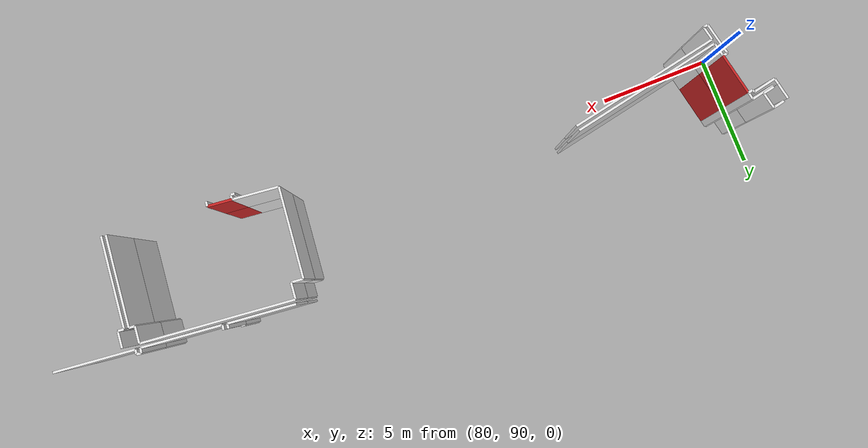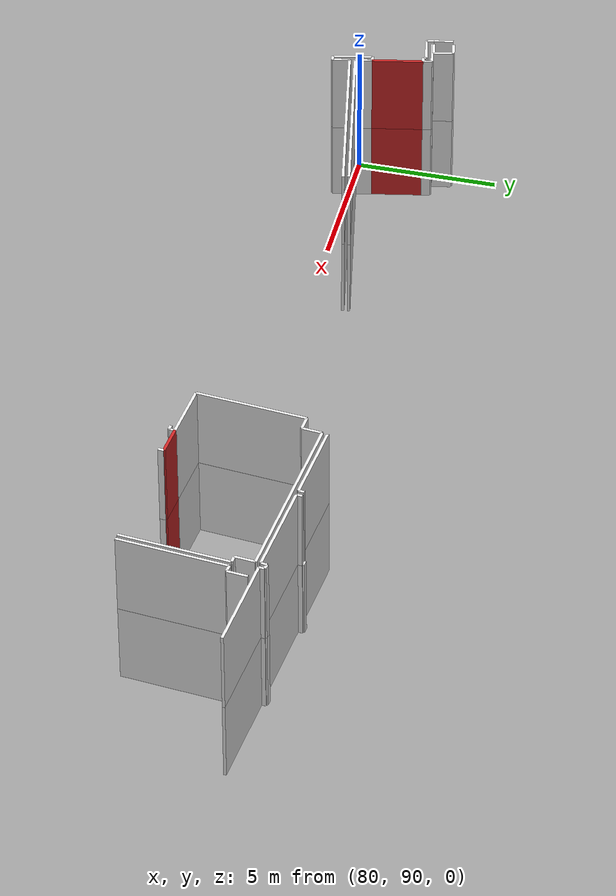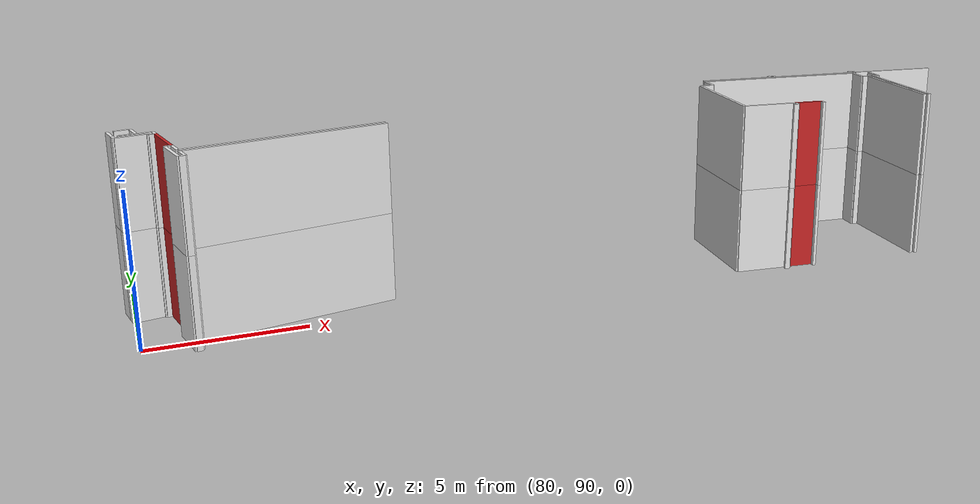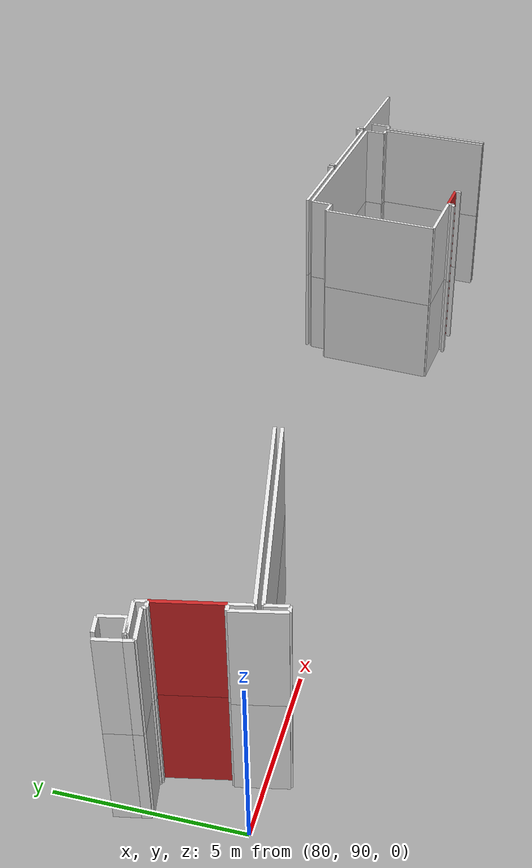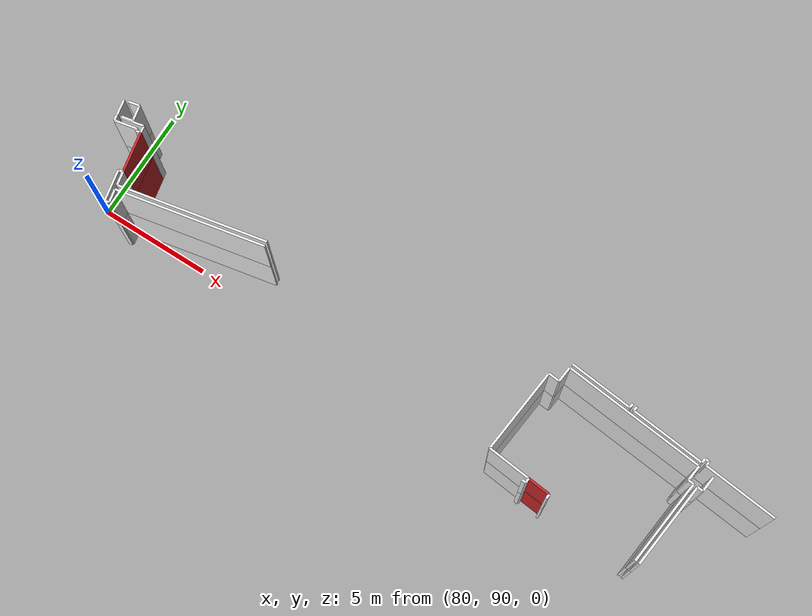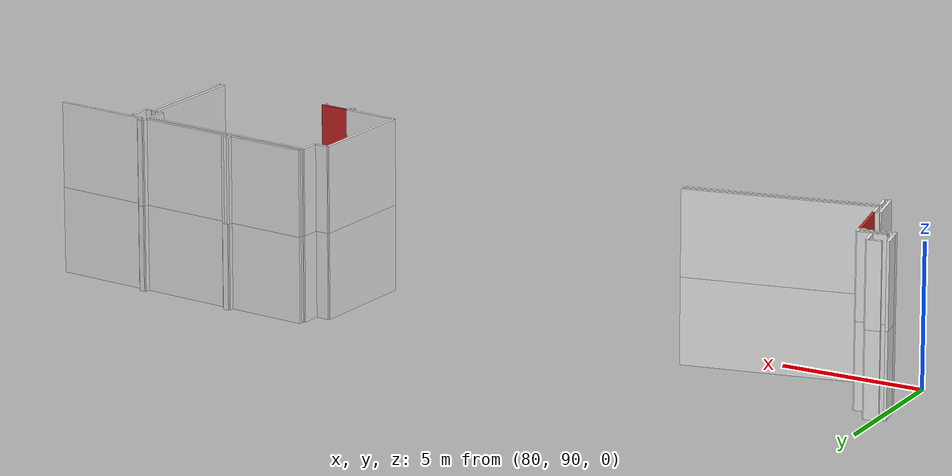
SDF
<sdf version="1.6">
 <world name="default">
  <model name="wall_102.4_88.9_1.5">
   <static>true</static>
   <pose>102.38000000000466 88.94000000017695 1.5 0 0 -0.09966865258337218</pose>
   <link name="link">
    <visual name="visual">
     <geometry><box><size>1.004987562121356 0.1 3</size></box></geometry>
     <material>
      <script><uri>file://media/materials/scripts/gazebo.material</uri><name>Gazebo/Red</name></script>
     </material>
    </visual>
    <collision name="collision"><geometry><box><size>1.004987562121356 0.1 3</size></box></geometry></collision>
   </link>
  </model>
  <model name="wall_81.3_91.7_1.5">
   <static>true</static>
   <pose>81.2949999999837 91.65999999991618 1.5 0 0 -1.374493662723798</pose>
   <link name="link">
    <visual name="visual">
     <geometry><box><size>1.7944637084198858 0.1 3</size></box></geometry>
     <material>
      <script><uri>file://media/materials/scripts/gazebo.material</uri><name>Gazebo/Red</name></script>
     </material>
    </visual>
    <collision name="collision"><geometry><box><size>1.7944637084198858 0.1 3</size></box></geometry></collision>
   </link>
  </model>
  <model name="wall_102.4_88.9_4.5">
   <static>true</static>
   <pose>102.38000000000466 88.94000000017695 4.5 0 0 -0.09966865258337218</pose>
   <link name="link">
    <visual name="visual">
     <geometry><box><size>1.004987562121356 0.1 3</size></box></geometry>
     <material>
      <script><uri>file://media/materials/scripts/gazebo.material</uri><name>Gazebo/Red</name></script>
     </material>
    </visual>
    <collision name="collision"><geometry><box><size>1.004987562121356 0.1 3</size></box></geometry></collision>
   </link>
  </model>
  <model name="wall_81.3_91.7_4.5">
   <static>true</static>
   <pose>81.2949999999837 91.65999999991618 4.5 0 0 -1.374493662723798</pose>
   <link name="link">
    <visual name="visual">
     <geometry><box><size>1.7944637084198858 0.1 3</size></box></geometry>
     <material>
      <script><uri>file://media/materials/scripts/gazebo.material</uri><name>Gazebo/Red</name></script>
     </material>
    </visual>
    <collision name="collision"><geometry><box><size>1.7944637084198858 0.1 3</size></box></geometry></collision>
   </link>
  </model>
  <model name="wall_107.2_90.4_1.5">
   <static>true</static>
   <pose>107.19000000000233 90.36499999999069 1.5 0 0 1.4703398593399408</pose>
   <link name="link">
    <visual name="visual">
     <geometry><box><size>3.78910279619648 0.1 3</size></box></geometry>
     <material>
      <script><uri>file://media/materials/scripts/gazebo.material</uri><name>Gazebo/White</name></script>
     </material>
    </visual>
    <collision name="collision"><geometry><box><size>3.78910279619648 0.1 3</size></box></geometry></collision>
   </link>
  </model>
  <model name="wall_107.3_92.3_1.5">
   <static>true</static>
   <pose>107.25500000000466 92.26000000000931 1.5 0 0 3.061762667803524</pose>
   <link name="link">
    <visual name="visual">
     <geometry><box><size>0.25079872408117443 0.1 3</size></box></geometry>
     <material>
      <script><uri>file://media/materials/scripts/gazebo.material</uri><name>Gazebo/White</name></script>
     </material>
    </visual>
    <collision name="collision"><geometry><box><size>0.25079872408117443 0.1 3</size></box></geometry></collision>
   </link>
  </model>
  <model name="wall_107.2_92.6_1.5">
   <static>true</static>
   <pose>107.16500000000815 92.62000000011176 1.5 0 0 1.4711276743202006</pose>
   <link name="link">
    <visual name="visual">
     <geometry><box><size>0.7034912936644975 0.1 3</size></box></geometry>
     <material>
      <script><uri>file://media/materials/scripts/gazebo.material</uri><name>Gazebo/White</name></script>
     </material>
    </visual>
    <collision name="collision"><geometry><box><size>0.7034912936644975 0.1 3</size></box></geometry></collision>
   </link>
  </model>
  <model name="wall_104.1_93.3_1.5">
   <static>true</static>
   <pose>104.05999999999767 93.28500000014901 1.5 0 0 3.041608692913362</pose>
   <link name="link">
    <visual name="visual">
     <geometry><box><size>6.311521211261997 0.1 3</size></box></geometry>
     <material>
      <script><uri>file://media/materials/scripts/gazebo.material</uri><name>Gazebo/White</name></script>
     </material>
    </visual>
    <collision name="collision"><geometry><box><size>6.311521211261997 0.1 3</size></box></geometry></collision>
   </link>
  </model>
  <model name="wall_100.9_93.3_1.5">
   <static>true</static>
   <pose>100.88499999998021 93.25500000012107 1.5 0 0 -1.6718996985493473</pose>
   <link name="link">
    <visual name="visual">
     <geometry><box><size>0.693541635321099 0.1 3</size></box></geometry>
     <material>
      <script><uri>file://media/materials/scripts/gazebo.material</uri><name>Gazebo/White</name></script>
     </material>
    </visual>
    <collision name="collision"><geometry><box><size>0.693541635321099 0.1 3</size></box></geometry></collision>
   </link>
  </model>
  <model name="wall_100.6_92.9_1.5">
   <static>true</static>
   <pose>100.59999999997672 92.93500000005588 1.5 0 0 3.0419240014674718</pose>
   <link name="link">
    <visual name="visual">
     <geometry><box><size>0.5024937810375105 0.1 3</size></box></geometry>
     <material>
      <script><uri>file://media/materials/scripts/gazebo.material</uri><name>Gazebo/White</name></script>
     </material>
    </visual>
    <collision name="collision"><geometry><box><size>0.5024937810375105 0.1 3</size></box></geometry></collision>
   </link>
  </model>
  <model name="wall_100.2_91.1_1.5">
   <static>true</static>
   <pose>100.15999999997439 91.07499999995343 1.5 0 0 -1.6712527942498523</pose>
   <link name="link">
    <visual name="visual">
     <geometry><box><size>3.78910279619648 0.1 3</size></box></geometry>
     <material>
      <script><uri>file://media/materials/scripts/gazebo.material</uri><name>Gazebo/White</name></script>
     </material>
    </visual>
    <collision name="collision"><geometry><box><size>3.78910279619648 0.1 3</size></box></geometry></collision>
   </link>
  </model>
  <model name="wall_100.9_89.1_1.5">
   <static>true</static>
   <pose>100.92499999998836 89.09000000008382 1.5 0 0 -0.10433183097900064</pose>
   <link name="link">
    <visual name="visual">
     <geometry><box><size>1.9204426573091837 0.1 3</size></box></geometry>
     <material>
      <script><uri>file://media/materials/scripts/gazebo.material</uri><name>Gazebo/White</name></script>
     </material>
    </visual>
    <collision name="collision"><geometry><box><size>1.9204426573091837 0.1 3</size></box></geometry></collision>
   </link>
  </model>
  <model name="wall_107.9_92.6_1.5">
   <static>true</static>
   <pose>107.85500000001048 92.55000000004657 1.5 0 0 -1.670464979335457</pose>
   <link name="link">
    <visual name="visual">
     <geometry><box><size>0.7034912932011471 0.1 3</size></box></geometry>
     <material>
      <script><uri>file://media/materials/scripts/gazebo.material</uri><name>Gazebo/White</name></script>
     </material>
    </visual>
    <collision name="collision"><geometry><box><size>0.7034912932011471 0.1 3</size></box></geometry></collision>
   </link>
  </model>
  <model name="wall_107.7_92.2_1.5">
   <static>true</static>
   <pose>107.69500000000698 92.21500000008382 1.5 0 0 3.0221637283793843</pose>
   <link name="link">
    <visual name="visual">
     <geometry><box><size>0.2517935662158716 0.1 3</size></box></geometry>
     <material>
      <script><uri>file://media/materials/scripts/gazebo.material</uri><name>Gazebo/White</name></script>
     </material>
    </visual>
    <collision name="collision"><geometry><box><size>0.2517935662158716 0.1 3</size></box></geometry></collision>
   </link>
  </model>
  <model name="wall_107.4_90.3_1.5">
   <static>true</static>
   <pose>107.38000000000466 90.34499999997206 1.5 0 0 -1.6712527942498523</pose>
   <link name="link">
    <visual name="visual">
     <geometry><box><size>3.78910279619648 0.1 3</size></box></geometry>
     <material>
      <script><uri>file://media/materials/scripts/gazebo.material</uri><name>Gazebo/White</name></script>
     </material>
    </visual>
    <collision name="collision"><geometry><box><size>3.78910279619648 0.1 3</size></box></geometry></collision>
   </link>
  </model>
  <model name="wall_101.8_88.8_1.5">
   <static>true</static>
   <pose>101.77499999999418 88.80000000004657 1.5 0 0 -0.11710874468606086</pose>
   <link name="link">
    <visual name="visual">
     <geometry><box><size>0.1711724276722267 0.1 3</size></box></geometry>
     <material>
      <script><uri>file://media/materials/scripts/gazebo.material</uri><name>Gazebo/White</name></script>
     </material>
    </visual>
    <collision name="collision"><geometry><box><size>0.1711724276722267 0.1 3</size></box></geometry></collision>
   </link>
  </model>
  <model name="wall_101.9_88.9_1.5">
   <static>true</static>
   <pose>101.86999999999534 88.89000000013039 1.5 0 0 1.4711276743037347</pose>
   <link name="link">
    <visual name="visual">
     <geometry><box><size>0.20099751260961132 0.1 3</size></box></geometry>
     <material>
      <script><uri>file://media/materials/scripts/gazebo.material</uri><name>Gazebo/White</name></script>
     </material>
    </visual>
    <collision name="collision"><geometry><box><size>0.20099751260961132 0.1 3</size></box></geometry></collision>
   </link>
  </model>
  <model name="wall_102.9_88.8_1.5">
   <static>true</static>
   <pose>102.86999999999534 88.79000000003725 1.5 0 0 -1.6704649792860586</pose>
   <link name="link">
    <visual name="visual">
     <geometry><box><size>0.20099751260961132 0.1 3</size></box></geometry>
     <material>
      <script><uri>file://media/materials/scripts/gazebo.material</uri><name>Gazebo/White</name></script>
     </material>
    </visual>
    <collision name="collision"><geometry><box><size>0.20099751260961132 0.1 3</size></box></geometry></collision>
   </link>
  </model>
  <model name="wall_80.2_93.4_1.5">
   <static>true</static>
   <pose>80.17499999998836 93.42000000015832 1.5 0 0 0.2013171085608308</pose>
   <link name="link">
    <visual name="visual">
     <geometry><box><size>0.5000999900114971 0.1 3</size></box></geometry>
     <material>
      <script><uri>file://media/materials/scripts/gazebo.material</uri><name>Gazebo/White</name></script>
     </material>
    </visual>
    <collision name="collision"><geometry><box><size>0.5000999900114971 0.1 3</size></box></geometry></collision>
   </link>
  </model>
  <model name="wall_80.5_93.1_1.5">
   <static>true</static>
   <pose>80.48999999999069 93.13000000012107 1.5 0 0 -1.3677511095704145</pose>
   <link name="link">
    <visual name="visual">
     <geometry><box><size>0.6942621984754026 0.1 3</size></box></geometry>
     <material>
      <script><uri>file://media/materials/scripts/gazebo.material</uri><name>Gazebo/White</name></script>
     </material>
    </visual>
    <collision name="collision"><geometry><box><size>0.6942621984754026 0.1 3</size></box></geometry></collision>
   </link>
  </model>
  <model name="wall_80.3_92.7_1.5">
   <static>true</static>
   <pose>80.31500000000233 92.73999999999069 1.5 0 0 -2.9402755450289626</pose>
   <link name="link">
    <visual name="visual">
     <geometry><box><size>0.5000999900114971 0.1 3</size></box></geometry>
     <material>
      <script><uri>file://media/materials/scripts/gazebo.material</uri><name>Gazebo/White</name></script>
     </material>
    </visual>
    <collision name="collision"><geometry><box><size>0.5000999900114971 0.1 3</size></box></geometry></collision>
   </link>
  </model>
  <model name="wall_80.1_92.7_1.5">
   <static>true</static>
   <pose>80.07500000001164 92.66500000003725 1.5 0 0 -1.3734007660495133</pose>
   <link name="link">
    <visual name="visual">
     <geometry><box><size>0.05099019495510694 0.1 3</size></box></geometry>
     <material>
      <script><uri>file://media/materials/scripts/gazebo.material</uri><name>Gazebo/White</name></script>
     </material>
    </visual>
    <collision name="collision"><geometry><box><size>0.05099019495510694 0.1 3</size></box></geometry></collision>
   </link>
  </model>
  <model name="wall_80.6_92.7_1.5">
   <static>true</static>
   <pose>80.57000000000698 92.73999999999069 1.5 0 0 0.20131710810466522</pose>
   <link name="link">
    <visual name="visual">
     <geometry><box><size>1.0001999799298806 0.1 3</size></box></geometry>
     <material>
      <script><uri>file://media/materials/scripts/gazebo.material</uri><name>Gazebo/White</name></script>
     </material>
    </visual>
    <collision name="collision"><geometry><box><size>1.0001999799298806 0.1 3</size></box></geometry></collision>
   </link>
  </model>
  <model name="wall_81.1_92.7_1.5">
   <static>true</static>
   <pose>81.08999999999651 92.68999999994412 1.5 0 0 -1.373400766833078</pose>
   <link name="link">
    <visual name="visual">
     <geometry><box><size>0.3059411706324631 0.1 3</size></box></geometry>
     <material>
      <script><uri>file://media/materials/scripts/gazebo.material</uri><name>Gazebo/White</name></script>
     </material>
    </visual>
    <collision name="collision"><geometry><box><size>0.3059411706324631 0.1 3</size></box></geometry></collision>
   </link>
  </model>
  <model name="wall_81.5_90.5_1.5">
   <static>true</static>
   <pose>81.52999999999884 90.48499999986961 1.5 0 0 -1.3701434493385232</pose>
   <link name="link">
    <visual name="visual">
     <geometry><box><size>0.6020797288042661 0.1 3</size></box></geometry>
     <material>
      <script><uri>file://media/materials/scripts/gazebo.material</uri><name>Gazebo/White</name></script>
     </material>
    </visual>
    <collision name="collision"><geometry><box><size>0.6020797288042661 0.1 3</size></box></geometry></collision>
   </link>
  </model>
  <model name="wall_84.8_90.8_1.5">
   <static>true</static>
   <pose>84.80500000002212 90.8300000000745 1.5 0 0 0.19649816258288277</pose>
   <link name="link">
    <visual name="visual">
     <geometry><box><size>6.556165037625101 0.1 3</size></box></geometry>
     <material>
      <script><uri>file://media/materials/scripts/gazebo.material</uri><name>Gazebo/White</name></script>
     </material>
    </visual>
    <collision name="collision"><geometry><box><size>6.556165037625101 0.1 3</size></box></geometry></collision>
   </link>
  </model>
  <model name="wall_79.8_93.0_1.5">
   <static>true</static>
   <pose>79.80499999999302 92.98999999999069 1.5 0 0 -1.3818991459561358</pose>
   <link name="link">
    <visual name="visual">
     <geometry><box><size>0.6923149573923696 0.1 3</size></box></geometry>
     <material>
      <script><uri>file://media/materials/scripts/gazebo.material</uri><name>Gazebo/White</name></script>
     </material>
    </visual>
    <collision name="collision"><geometry><box><size>0.6923149573923696 0.1 3</size></box></geometry></collision>
   </link>
  </model>
  <model name="wall_79.9_92.5_1.5">
   <static>true</static>
   <pose>79.89499999998952 92.52499999990687 1.5 0 0 -1.373400766989791</pose>
   <link name="link">
    <visual name="visual">
     <geometry><box><size>0.25495097567735614 0.1 3</size></box></geometry>
     <material>
      <script><uri>file://media/materials/scripts/gazebo.material</uri><name>Gazebo/White</name></script>
     </material>
    </visual>
    <collision name="collision"><geometry><box><size>0.25495097567735614 0.1 3</size></box></geometry></collision>
   </link>
  </model>
  <model name="wall_80.4_92.5_1.5">
   <static>true</static>
   <pose>80.41000000000349 92.5 1.5 0 0 0.20131710854919393</pose>
   <link name="link">
    <visual name="visual">
     <geometry><box><size>1.0001999800800263 0.1 3</size></box></geometry>
     <material>
      <script><uri>file://media/materials/scripts/gazebo.material</uri><name>Gazebo/White</name></script>
     </material>
    </visual>
    <collision name="collision"><geometry><box><size>1.0001999800800263 0.1 3</size></box></geometry></collision>
   </link>
  </model>
  <model name="wall_80.9_92.6_1.5">
   <static>true</static>
   <pose>80.91000000000349 92.55000000004657 1.5 0 0 -1.3734007675047049</pose>
   <link name="link">
    <visual name="visual">
     <geometry><box><size>0.10198039035541688 0.1 3</size></box></geometry>
     <material>
      <script><uri>file://media/materials/scripts/gazebo.material</uri><name>Gazebo/White</name></script>
     </material>
    </visual>
    <collision name="collision"><geometry><box><size>0.10198039035541688 0.1 3</size></box></geometry></collision>
   </link>
  </model>
  <model name="wall_81.0_92.5_1.5">
   <static>true</static>
   <pose>81.01999999998952 92.52000000001863 1.5 0 0 0.19739556001778746</pose>
   <link name="link">
    <visual name="visual">
     <geometry><box><size>0.20396078056243275 0.1 3</size></box></geometry>
     <material>
      <script><uri>file://media/materials/scripts/gazebo.material</uri><name>Gazebo/White</name></script>
     </material>
    </visual>
    <collision name="collision"><geometry><box><size>0.20396078056243275 0.1 3</size></box></geometry></collision>
   </link>
  </model>
  <model name="wall_81.4_90.8_1.5">
   <static>true</static>
   <pose>81.36999999999534 90.76000000000931 1.5 0 0 -2.944197095754793</pose>
   <link name="link">
    <visual name="visual">
     <geometry><box><size>0.20396078041403173 0.1 3</size></box></geometry>
     <material>
      <script><uri>file://media/materials/scripts/gazebo.material</uri><name>Gazebo/White</name></script>
     </material>
    </visual>
    <collision name="collision"><geometry><box><size>0.20396078041403173 0.1 3</size></box></geometry></collision>
   </link>
  </model>
  <model name="wall_81.4_90.1_1.5">
   <static>true</static>
   <pose>81.41000000000349 90.06000000005588 1.5 0 0 -1.3677511096114738</pose>
   <link name="link">
    <visual name="visual">
     <geometry><box><size>1.3885243969390675 0.1 3</size></box></geometry>
     <material>
      <script><uri>file://media/materials/scripts/gazebo.material</uri><name>Gazebo/White</name></script>
     </material>
    </visual>
    <collision name="collision"><geometry><box><size>1.3885243969390675 0.1 3</size></box></geometry></collision>
   </link>
  </model>
  <model name="wall_81.6_89.4_1.5">
   <static>true</static>
   <pose>81.64499999998952 89.39999999990687 1.5 0 0 0.20749622662047904</pose>
   <link name="link">
    <visual name="visual">
     <geometry><box><size>0.19416487839942884 0.1 3</size></box></geometry>
     <material>
      <script><uri>file://media/materials/scripts/gazebo.material</uri><name>Gazebo/White</name></script>
     </material>
    </visual>
    <collision name="collision"><geometry><box><size>0.19416487839942884 0.1 3</size></box></geometry></collision>
   </link>
  </model>
  <model name="wall_109.1_93.0_1.5">
   <static>true</static>
   <pose>109.06500000000233 92.95999999996275 1.5 0 0 3.038614747280068</pose>
   <link name="link">
    <visual name="visual">
     <geometry><box><size>3.3075217308649383 0.1 3</size></box></geometry>
     <material>
      <script><uri>file://media/materials/scripts/gazebo.material</uri><name>Gazebo/White</name></script>
     </material>
    </visual>
    <collision name="collision"><geometry><box><size>3.3075217308649383 0.1 3</size></box></geometry></collision>
   </link>
  </model>
  <model name="wall_107.4_93.2_1.5">
   <static>true</static>
   <pose>107.42999999999302 93.2249999998603 1.5 0 0 1.4659193879370842</pose>
   <link name="link">
    <visual name="visual">
     <geometry><box><size>0.19104973169180559 0.1 3</size></box></geometry>
     <material>
      <script><uri>file://media/materials/scripts/gazebo.material</uri><name>Gazebo/White</name></script>
     </material>
    </visual>
    <collision name="collision"><geometry><box><size>0.19104973169180559 0.1 3</size></box></geometry></collision>
   </link>
  </model>
  <model name="wall_107.3_93.3_1.5">
   <static>true</static>
   <pose>107.34500000000116 93.33499999996275 1.5 0 0 2.9849907752705747</pose>
   <link name="link">
    <visual name="visual">
     <geometry><box><size>0.19235384065968367 0.1 3</size></box></geometry>
     <material>
      <script><uri>file://media/materials/scripts/gazebo.material</uri><name>Gazebo/White</name></script>
     </material>
    </visual>
    <collision name="collision"><geometry><box><size>0.19235384065968367 0.1 3</size></box></geometry></collision>
   </link>
  </model>
  <model name="wall_107.2_93.2_1.5">
   <static>true</static>
   <pose>107.23499999998603 93.24500000011176 1.5 0 0 -1.712693381554281</pose>
   <link name="link">
    <visual name="visual">
     <geometry><box><size>0.21213203432303704 0.1 3</size></box></geometry>
     <material>
      <script><uri>file://media/materials/scripts/gazebo.material</uri><name>Gazebo/White</name></script>
     </material>
    </visual>
    <collision name="collision"><geometry><box><size>0.21213203432303704 0.1 3</size></box></geometry></collision>
   </link>
  </model>
  <model name="wall_105.6_93.3_1.5">
   <static>true</static>
   <pose>105.57499999998254 93.31000000005588 1.5 0 0 3.038614747278259</pose>
   <link name="link">
    <visual name="visual">
     <geometry><box><size>3.307521730807039 0.1 3</size></box></geometry>
     <material>
      <script><uri>file://media/materials/scripts/gazebo.material</uri><name>Gazebo/White</name></script>
     </material>
    </visual>
    <collision name="collision"><geometry><box><size>3.307521730807039 0.1 3</size></box></geometry></collision>
   </link>
  </model>
  <model name="wall_103.9_93.6_1.5">
   <static>true</static>
   <pose>103.94500000000698 93.5800000000745 1.5 0 0 1.4219063791853994</pose>
   <link name="link">
    <visual name="visual">
     <geometry><box><size>0.20223748434991518 0.1 3</size></box></geometry>
     <material>
      <script><uri>file://media/materials/scripts/gazebo.material</uri><name>Gazebo/White</name></script>
     </material>
    </visual>
    <collision name="collision"><geometry><box><size>0.20223748434991518 0.1 3</size></box></geometry></collision>
   </link>
  </model>
  <model name="wall_103.9_93.7_1.5">
   <static>true</static>
   <pose>103.86000000001513 93.69000000017695 1.5 0 0 3.0419240010121844</pose>
   <link name="link">
    <visual name="visual">
     <geometry><box><size>0.20099751243585498 0.1 3</size></box></geometry>
     <material>
      <script><uri>file://media/materials/scripts/gazebo.material</uri><name>Gazebo/White</name></script>
     </material>
    </visual>
    <collision name="collision"><geometry><box><size>0.20099751243585498 0.1 3</size></box></geometry></collision>
   </link>
  </model>
  <model name="wall_103.8_93.6_1.5">
   <static>true</static>
   <pose>103.75 93.60000000009313 1.5 0 0 -1.6704649792860586</pose>
   <link name="link">
    <visual name="visual">
     <geometry><box><size>0.20099751260961132 0.1 3</size></box></geometry>
     <material>
      <script><uri>file://media/materials/scripts/gazebo.material</uri><name>Gazebo/White</name></script>
     </material>
    </visual>
    <collision name="collision"><geometry><box><size>0.20099751260961132 0.1 3</size></box></geometry></collision>
   </link>
  </model>
  <model name="wall_102.3_93.6_1.5">
   <static>true</static>
   <pose>102.34500000000116 93.63999999989755 1.5 0 0 3.041569139581511</pose>
   <link name="link">
    <visual name="visual">
     <geometry><box><size>2.804014978520681 0.1 3</size></box></geometry>
     <material>
      <script><uri>file://media/materials/scripts/gazebo.material</uri><name>Gazebo/White</name></script>
     </material>
    </visual>
    <collision name="collision"><geometry><box><size>2.804014978520681 0.1 3</size></box></geometry></collision>
   </link>
  </model>
  <model name="wall_84.8_90.6_1.5">
   <static>true</static>
   <pose>84.83499999999185 90.63500000000931 1.5 0 0 -2.946590865346617</pose>
   <link name="link">
    <visual name="visual">
     <geometry><box><size>6.554220014613294 0.1 3</size></box></geometry>
     <material>
      <script><uri>file://media/materials/scripts/gazebo.material</uri><name>Gazebo/White</name></script>
     </material>
    </visual>
    <collision name="collision"><geometry><box><size>6.554220014613294 0.1 3</size></box></geometry></collision>
   </link>
  </model>
  <model name="wall_81.7_89.7_1.5">
   <static>true</static>
   <pose>81.67999999999302 89.70999999996275 1.5 0 0 -1.3667783472355337</pose>
   <link name="link">
    <visual name="visual">
     <geometry><box><size>0.592283715870451 0.1 3</size></box></geometry>
     <material>
      <script><uri>file://media/materials/scripts/gazebo.material</uri><name>Gazebo/White</name></script>
     </material>
    </visual>
    <collision name="collision"><geometry><box><size>0.592283715870451 0.1 3</size></box></geometry></collision>
   </link>
  </model>
  <model name="wall_107.2_90.4_4.5">
   <static>true</static>
   <pose>107.19000000000233 90.36499999999069 4.5 0 0 1.4703398593399408</pose>
   <link name="link">
    <visual name="visual">
     <geometry><box><size>3.78910279619648 0.1 3</size></box></geometry>
     <material>
      <script><uri>file://media/materials/scripts/gazebo.material</uri><name>Gazebo/White</name></script>
     </material>
    </visual>
    <collision name="collision"><geometry><box><size>3.78910279619648 0.1 3</size></box></geometry></collision>
   </link>
  </model>
  <model name="wall_107.3_92.3_4.5">
   <static>true</static>
   <pose>107.25500000000466 92.26000000000931 4.5 0 0 3.061762667803524</pose>
   <link name="link">
    <visual name="visual">
     <geometry><box><size>0.25079872408117443 0.1 3</size></box></geometry>
     <material>
      <script><uri>file://media/materials/scripts/gazebo.material</uri><name>Gazebo/White</name></script>
     </material>
    </visual>
    <collision name="collision"><geometry><box><size>0.25079872408117443 0.1 3</size></box></geometry></collision>
   </link>
  </model>
  <model name="wall_107.2_92.6_4.5">
   <static>true</static>
   <pose>107.16500000000815 92.62000000011176 4.5 0 0 1.4711276743202006</pose>
   <link name="link">
    <visual name="visual">
     <geometry><box><size>0.7034912936644975 0.1 3</size></box></geometry>
     <material>
      <script><uri>file://media/materials/scripts/gazebo.material</uri><name>Gazebo/White</name></script>
     </material>
    </visual>
    <collision name="collision"><geometry><box><size>0.7034912936644975 0.1 3</size></box></geometry></collision>
   </link>
  </model>
  <model name="wall_104.1_93.3_4.5">
   <static>true</static>
   <pose>104.05999999999767 93.28500000014901 4.5 0 0 3.041608692913362</pose>
   <link name="link">
    <visual name="visual">
     <geometry><box><size>6.311521211261997 0.1 3</size></box></geometry>
     <material>
      <script><uri>file://media/materials/scripts/gazebo.material</uri><name>Gazebo/White</name></script>
     </material>
    </visual>
    <collision name="collision"><geometry><box><size>6.311521211261997 0.1 3</size></box></geometry></collision>
   </link>
  </model>
  <model name="wall_100.9_93.3_4.5">
   <static>true</static>
   <pose>100.88499999998021 93.25500000012107 4.5 0 0 -1.6718996985493473</pose>
   <link name="link">
    <visual name="visual">
     <geometry><box><size>0.693541635321099 0.1 3</size></box></geometry>
     <material>
      <script><uri>file://media/materials/scripts/gazebo.material</uri><name>Gazebo/White</name></script>
     </material>
    </visual>
    <collision name="collision"><geometry><box><size>0.693541635321099 0.1 3</size></box></geometry></collision>
   </link>
  </model>
  <model name="wall_100.6_92.9_4.5">
   <static>true</static>
   <pose>100.59999999997672 92.93500000005588 4.5 0 0 3.0419240014674718</pose>
   <link name="link">
    <visual name="visual">
     <geometry><box><size>0.5024937810375105 0.1 3</size></box></geometry>
     <material>
      <script><uri>file://media/materials/scripts/gazebo.material</uri><name>Gazebo/White</name></script>
     </material>
    </visual>
    <collision name="collision"><geometry><box><size>0.5024937810375105 0.1 3</size></box></geometry></collision>
   </link>
  </model>
  <model name="wall_100.2_91.1_4.5">
   <static>true</static>
   <pose>100.15999999997439 91.07499999995343 4.5 0 0 -1.6712527942498523</pose>
   <link name="link">
    <visual name="visual">
     <geometry><box><size>3.78910279619648 0.1 3</size></box></geometry>
     <material>
      <script><uri>file://media/materials/scripts/gazebo.material</uri><name>Gazebo/White</name></script>
     </material>
    </visual>
    <collision name="collision"><geometry><box><size>3.78910279619648 0.1 3</size></box></geometry></collision>
   </link>
  </model>
  <model name="wall_100.9_89.1_4.5">
   <static>true</static>
   <pose>100.92499999998836 89.09000000008382 4.5 0 0 -0.10433183097900064</pose>
   <link name="link">
    <visual name="visual">
     <geometry><box><size>1.9204426573091837 0.1 3</size></box></geometry>
     <material>
      <script><uri>file://media/materials/scripts/gazebo.material</uri><name>Gazebo/White</name></script>
     </material>
    </visual>
    <collision name="collision"><geometry><box><size>1.9204426573091837 0.1 3</size></box></geometry></collision>
   </link>
  </model>
  <model name="wall_107.9_92.6_4.5">
   <static>true</static>
   <pose>107.85500000001048 92.55000000004657 4.5 0 0 -1.670464979335457</pose>
   <link name="link">
    <visual name="visual">
     <geometry><box><size>0.7034912932011471 0.1 3</size></box></geometry>
     <material>
      <script><uri>file://media/materials/scripts/gazebo.material</uri><name>Gazebo/White</name></script>
     </material>
    </visual>
    <collision name="collision"><geometry><box><size>0.7034912932011471 0.1 3</size></box></geometry></collision>
   </link>
  </model>
  <model name="wall_107.7_92.2_4.5">
   <static>true</static>
   <pose>107.69500000000698 92.21500000008382 4.5 0 0 3.0221637283793843</pose>
   <link name="link">
    <visual name="visual">
     <geometry><box><size>0.2517935662158716 0.1 3</size></box></geometry>
     <material>
      <script><uri>file://media/materials/scripts/gazebo.material</uri><name>Gazebo/White</name></script>
     </material>
    </visual>
    <collision name="collision"><geometry><box><size>0.2517935662158716 0.1 3</size></box></geometry></collision>
   </link>
  </model>
  <model name="wall_107.4_90.3_4.5">
   <static>true</static>
   <pose>107.38000000000466 90.34499999997206 4.5 0 0 -1.6712527942498523</pose>
   <link name="link">
    <visual name="visual">
     <geometry><box><size>3.78910279619648 0.1 3</size></box></geometry>
     <material>
      <script><uri>file://media/materials/scripts/gazebo.material</uri><name>Gazebo/White</name></script>
     </material>
    </visual>
    <collision name="collision"><geometry><box><size>3.78910279619648 0.1 3</size></box></geometry></collision>
   </link>
  </model>
  <model name="wall_101.8_88.8_4.5">
   <static>true</static>
   <pose>101.77499999999418 88.80000000004657 4.5 0 0 -0.11710874468606086</pose>
   <link name="link">
    <visual name="visual">
     <geometry><box><size>0.1711724276722267 0.1 3</size></box></geometry>
     <material>
      <script><uri>file://media/materials/scripts/gazebo.material</uri><name>Gazebo/White</name></script>
     </material>
    </visual>
    <collision name="collision"><geometry><box><size>0.1711724276722267 0.1 3</size></box></geometry></collision>
   </link>
  </model>
  <model name="wall_101.9_88.9_4.5">
   <static>true</static>
   <pose>101.86999999999534 88.89000000013039 4.5 0 0 1.4711276743037347</pose>
   <link name="link">
    <visual name="visual">
     <geometry><box><size>0.20099751260961132 0.1 3</size></box></geometry>
     <material>
      <script><uri>file://media/materials/scripts/gazebo.material</uri><name>Gazebo/White</name></script>
     </material>
    </visual>
    <collision name="collision"><geometry><box><size>0.20099751260961132 0.1 3</size></box></geometry></collision>
   </link>
  </model>
  <model name="wall_102.9_88.8_4.5">
   <static>true</static>
   <pose>102.86999999999534 88.79000000003725 4.5 0 0 -1.6704649792860586</pose>
   <link name="link">
    <visual name="visual">
     <geometry><box><size>0.20099751260961132 0.1 3</size></box></geometry>
     <material>
      <script><uri>file://media/materials/scripts/gazebo.material</uri><name>Gazebo/White</name></script>
     </material>
    </visual>
    <collision name="collision"><geometry><box><size>0.20099751260961132 0.1 3</size></box></geometry></collision>
   </link>
  </model>
  <model name="wall_80.2_93.4_4.5">
   <static>true</static>
   <pose>80.17499999998836 93.42000000015832 4.5 0 0 0.2013171085608308</pose>
   <link name="link">
    <visual name="visual">
     <geometry><box><size>0.5000999900114971 0.1 3</size></box></geometry>
     <material>
      <script><uri>file://media/materials/scripts/gazebo.material</uri><name>Gazebo/White</name></script>
     </material>
    </visual>
    <collision name="collision"><geometry><box><size>0.5000999900114971 0.1 3</size></box></geometry></collision>
   </link>
  </model>
  <model name="wall_80.5_93.1_4.5">
   <static>true</static>
   <pose>80.48999999999069 93.13000000012107 4.5 0 0 -1.3677511095704145</pose>
   <link name="link">
    <visual name="visual">
     <geometry><box><size>0.6942621984754026 0.1 3</size></box></geometry>
     <material>
      <script><uri>file://media/materials/scripts/gazebo.material</uri><name>Gazebo/White</name></script>
     </material>
    </visual>
    <collision name="collision"><geometry><box><size>0.6942621984754026 0.1 3</size></box></geometry></collision>
   </link>
  </model>
  <model name="wall_80.3_92.7_4.5">
   <static>true</static>
   <pose>80.31500000000233 92.73999999999069 4.5 0 0 -2.9402755450289626</pose>
   <link name="link">
    <visual name="visual">
     <geometry><box><size>0.5000999900114971 0.1 3</size></box></geometry>
     <material>
      <script><uri>file://media/materials/scripts/gazebo.material</uri><name>Gazebo/White</name></script>
     </material>
    </visual>
    <collision name="collision"><geometry><box><size>0.5000999900114971 0.1 3</size></box></geometry></collision>
   </link>
  </model>
  <model name="wall_80.1_92.7_4.5">
   <static>true</static>
   <pose>80.07500000001164 92.66500000003725 4.5 0 0 -1.3734007660495133</pose>
   <link name="link">
    <visual name="visual">
     <geometry><box><size>0.05099019495510694 0.1 3</size></box></geometry>
     <material>
      <script><uri>file://media/materials/scripts/gazebo.material</uri><name>Gazebo/White</name></script>
     </material>
    </visual>
    <collision name="collision"><geometry><box><size>0.05099019495510694 0.1 3</size></box></geometry></collision>
   </link>
  </model>
  <model name="wall_80.6_92.7_4.5">
   <static>true</static>
   <pose>80.57000000000698 92.73999999999069 4.5 0 0 0.20131710810466522</pose>
   <link name="link">
    <visual name="visual">
     <geometry><box><size>1.0001999799298806 0.1 3</size></box></geometry>
     <material>
      <script><uri>file://media/materials/scripts/gazebo.material</uri><name>Gazebo/White</name></script>
     </material>
    </visual>
    <collision name="collision"><geometry><box><size>1.0001999799298806 0.1 3</size></box></geometry></collision>
   </link>
  </model>
  <model name="wall_81.1_92.7_4.5">
   <static>true</static>
   <pose>81.08999999999651 92.68999999994412 4.5 0 0 -1.373400766833078</pose>
   <link name="link">
    <visual name="visual">
     <geometry><box><size>0.3059411706324631 0.1 3</size></box></geometry>
     <material>
      <script><uri>file://media/materials/scripts/gazebo.material</uri><name>Gazebo/White</name></script>
     </material>
    </visual>
    <collision name="collision"><geometry><box><size>0.3059411706324631 0.1 3</size></box></geometry></collision>
   </link>
  </model>
  <model name="wall_81.5_90.5_4.5">
   <static>true</static>
   <pose>81.52999999999884 90.48499999986961 4.5 0 0 -1.3701434493385232</pose>
   <link name="link">
    <visual name="visual">
     <geometry><box><size>0.6020797288042661 0.1 3</size></box></geometry>
     <material>
      <script><uri>file://media/materials/scripts/gazebo.material</uri><name>Gazebo/White</name></script>
     </material>
    </visual>
    <collision name="collision"><geometry><box><size>0.6020797288042661 0.1 3</size></box></geometry></collision>
   </link>
  </model>
  <model name="wall_84.8_90.8_4.5">
   <static>true</static>
   <pose>84.80500000002212 90.8300000000745 4.5 0 0 0.19649816258288277</pose>
   <link name="link">
    <visual name="visual">
     <geometry><box><size>6.556165037625101 0.1 3</size></box></geometry>
     <material>
      <script><uri>file://media/materials/scripts/gazebo.material</uri><name>Gazebo/White</name></script>
     </material>
    </visual>
    <collision name="collision"><geometry><box><size>6.556165037625101 0.1 3</size></box></geometry></collision>
   </link>
  </model>
  <model name="wall_79.8_93.0_4.5">
   <static>true</static>
   <pose>79.80499999999302 92.98999999999069 4.5 0 0 -1.3818991459561358</pose>
   <link name="link">
    <visual name="visual">
     <geometry><box><size>0.6923149573923696 0.1 3</size></box></geometry>
     <material>
      <script><uri>file://media/materials/scripts/gazebo.material</uri><name>Gazebo/White</name></script>
     </material>
    </visual>
    <collision name="collision"><geometry><box><size>0.6923149573923696 0.1 3</size></box></geometry></collision>
   </link>
  </model>
  <model name="wall_79.9_92.5_4.5">
   <static>true</static>
   <pose>79.89499999998952 92.52499999990687 4.5 0 0 -1.373400766989791</pose>
   <link name="link">
    <visual name="visual">
     <geometry><box><size>0.25495097567735614 0.1 3</size></box></geometry>
     <material>
      <script><uri>file://media/materials/scripts/gazebo.material</uri><name>Gazebo/White</name></script>
     </material>
    </visual>
    <collision name="collision"><geometry><box><size>0.25495097567735614 0.1 3</size></box></geometry></collision>
   </link>
  </model>
  <model name="wall_80.4_92.5_4.5">
   <static>true</static>
   <pose>80.41000000000349 92.5 4.5 0 0 0.20131710854919393</pose>
   <link name="link">
    <visual name="visual">
     <geometry><box><size>1.0001999800800263 0.1 3</size></box></geometry>
     <material>
      <script><uri>file://media/materials/scripts/gazebo.material</uri><name>Gazebo/White</name></script>
     </material>
    </visual>
    <collision name="collision"><geometry><box><size>1.0001999800800263 0.1 3</size></box></geometry></collision>
   </link>
  </model>
  <model name="wall_80.9_92.6_4.5">
   <static>true</static>
   <pose>80.91000000000349 92.55000000004657 4.5 0 0 -1.3734007675047049</pose>
   <link name="link">
    <visual name="visual">
     <geometry><box><size>0.10198039035541688 0.1 3</size></box></geometry>
     <material>
      <script><uri>file://media/materials/scripts/gazebo.material</uri><name>Gazebo/White</name></script>
     </material>
    </visual>
    <collision name="collision"><geometry><box><size>0.10198039035541688 0.1 3</size></box></geometry></collision>
   </link>
  </model>
  <model name="wall_81.0_92.5_4.5">
   <static>true</static>
   <pose>81.01999999998952 92.52000000001863 4.5 0 0 0.19739556001778746</pose>
   <link name="link">
    <visual name="visual">
     <geometry><box><size>0.20396078056243275 0.1 3</size></box></geometry>
     <material>
      <script><uri>file://media/materials/scripts/gazebo.material</uri><name>Gazebo/White</name></script>
     </material>
    </visual>
    <collision name="collision"><geometry><box><size>0.20396078056243275 0.1 3</size></box></geometry></collision>
   </link>
  </model>
  <model name="wall_81.4_90.8_4.5">
   <static>true</static>
   <pose>81.36999999999534 90.76000000000931 4.5 0 0 -2.944197095754793</pose>
   <link name="link">
    <visual name="visual">
     <geometry><box><size>0.20396078041403173 0.1 3</size></box></geometry>
     <material>
      <script><uri>file://media/materials/scripts/gazebo.material</uri><name>Gazebo/White</name></script>
     </material>
    </visual>
    <collision name="collision"><geometry><box><size>0.20396078041403173 0.1 3</size></box></geometry></collision>
   </link>
  </model>
  <model name="wall_81.4_90.1_4.5">
   <static>true</static>
   <pose>81.41000000000349 90.06000000005588 4.5 0 0 -1.3677511096114738</pose>
   <link name="link">
    <visual name="visual">
     <geometry><box><size>1.3885243969390675 0.1 3</size></box></geometry>
     <material>
      <script><uri>file://media/materials/scripts/gazebo.material</uri><name>Gazebo/White</name></script>
     </material>
    </visual>
    <collision name="collision"><geometry><box><size>1.3885243969390675 0.1 3</size></box></geometry></collision>
   </link>
  </model>
  <model name="wall_81.6_89.4_4.5">
   <static>true</static>
   <pose>81.64499999998952 89.39999999990687 4.5 0 0 0.20749622662047904</pose>
   <link name="link">
    <visual name="visual">
     <geometry><box><size>0.19416487839942884 0.1 3</size></box></geometry>
     <material>
      <script><uri>file://media/materials/scripts/gazebo.material</uri><name>Gazebo/White</name></script>
     </material>
    </visual>
    <collision name="collision"><geometry><box><size>0.19416487839942884 0.1 3</size></box></geometry></collision>
   </link>
  </model>
  <model name="wall_109.1_93.0_4.5">
   <static>true</static>
   <pose>109.06500000000233 92.95999999996275 4.5 0 0 3.038614747280068</pose>
   <link name="link">
    <visual name="visual">
     <geometry><box><size>3.3075217308649383 0.1 3</size></box></geometry>
     <material>
      <script><uri>file://media/materials/scripts/gazebo.material</uri><name>Gazebo/White</name></script>
     </material>
    </visual>
    <collision name="collision"><geometry><box><size>3.3075217308649383 0.1 3</size></box></geometry></collision>
   </link>
  </model>
  <model name="wall_107.4_93.2_4.5">
   <static>true</static>
   <pose>107.42999999999302 93.2249999998603 4.5 0 0 1.4659193879370842</pose>
   <link name="link">
    <visual name="visual">
     <geometry><box><size>0.19104973169180559 0.1 3</size></box></geometry>
     <material>
      <script><uri>file://media/materials/scripts/gazebo.material</uri><name>Gazebo/White</name></script>
     </material>
    </visual>
    <collision name="collision"><geometry><box><size>0.19104973169180559 0.1 3</size></box></geometry></collision>
   </link>
  </model>
  <model name="wall_107.3_93.3_4.5">
   <static>true</static>
   <pose>107.34500000000116 93.33499999996275 4.5 0 0 2.9849907752705747</pose>
   <link name="link">
    <visual name="visual">
     <geometry><box><size>0.19235384065968367 0.1 3</size></box></geometry>
     <material>
      <script><uri>file://media/materials/scripts/gazebo.material</uri><name>Gazebo/White</name></script>
     </material>
    </visual>
    <collision name="collision"><geometry><box><size>0.19235384065968367 0.1 3</size></box></geometry></collision>
   </link>
  </model>
  <model name="wall_107.2_93.2_4.5">
   <static>true</static>
   <pose>107.23499999998603 93.24500000011176 4.5 0 0 -1.712693381554281</pose>
   <link name="link">
    <visual name="visual">
     <geometry><box><size>0.21213203432303704 0.1 3</size></box></geometry>
     <material>
      <script><uri>file://media/materials/scripts/gazebo.material</uri><name>Gazebo/White</name></script>
     </material>
    </visual>
    <collision name="collision"><geometry><box><size>0.21213203432303704 0.1 3</size></box></geometry></collision>
   </link>
  </model>
  <model name="wall_105.6_93.3_4.5">
   <static>true</static>
   <pose>105.57499999998254 93.31000000005588 4.5 0 0 3.038614747278259</pose>
   <link name="link">
    <visual name="visual">
     <geometry><box><size>3.307521730807039 0.1 3</size></box></geometry>
     <material>
      <script><uri>file://media/materials/scripts/gazebo.material</uri><name>Gazebo/White</name></script>
     </material>
    </visual>
    <collision name="collision"><geometry><box><size>3.307521730807039 0.1 3</size></box></geometry></collision>
   </link>
  </model>
  <model name="wall_103.9_93.6_4.5">
   <static>true</static>
   <pose>103.94500000000698 93.5800000000745 4.5 0 0 1.4219063791853994</pose>
   <link name="link">
    <visual name="visual">
     <geometry><box><size>0.20223748434991518 0.1 3</size></box></geometry>
     <material>
      <script><uri>file://media/materials/scripts/gazebo.material</uri><name>Gazebo/White</name></script>
     </material>
    </visual>
    <collision name="collision"><geometry><box><size>0.20223748434991518 0.1 3</size></box></geometry></collision>
   </link>
  </model>
  <model name="wall_103.8_93.6_4.5">
   <static>true</static>
   <pose>103.75 93.60000000009313 4.5 0 0 -1.6704649792860586</pose>
   <link name="link">
    <visual name="visual">
     <geometry><box><size>0.20099751260961132 0.1 3</size></box></geometry>
     <material>
      <script><uri>file://media/materials/scripts/gazebo.material</uri><name>Gazebo/White</name></script>
     </material>
    </visual>
    <collision name="collision"><geometry><box><size>0.20099751260961132 0.1 3</size></box></geometry></collision>
   </link>
  </model>
  <model name="wall_102.3_93.6_4.5">
   <static>true</static>
   <pose>102.34500000000116 93.63999999989755 4.5 0 0 3.041569139581511</pose>
   <link name="link">
    <visual name="visual">
     <geometry><box><size>2.804014978520681 0.1 3</size></box></geometry>
     <material>
      <script><uri>file://media/materials/scripts/gazebo.material</uri><name>Gazebo/White</name></script>
     </material>
    </visual>
    <collision name="collision"><geometry><box><size>2.804014978520681 0.1 3</size></box></geometry></collision>
   </link>
  </model>
  <model name="wall_84.8_90.6_4.5">
   <static>true</static>
   <pose>84.83499999999185 90.63500000000931 4.5 0 0 -2.946590865346617</pose>
   <link name="link">
    <visual name="visual">
     <geometry><box><size>6.554220014613294 0.1 3</size></box></geometry>
     <material>
      <script><uri>file://media/materials/scripts/gazebo.material</uri><name>Gazebo/White</name></script>
     </material>
    </visual>
    <collision name="collision"><geometry><box><size>6.554220014613294 0.1 3</size></box></geometry></collision>
   </link>
  </model>
  <model name="wall_81.7_89.7_4.5">
   <static>true</static>
   <pose>81.67999999999302 89.70999999996275 4.5 0 0 -1.3667783472355337</pose>
   <link name="link">
    <visual name="visual">
     <geometry><box><size>0.592283715870451 0.1 3</size></box></geometry>
     <material>
      <script><uri>file://media/materials/scripts/gazebo.material</uri><name>Gazebo/White</name></script>
     </material>
    </visual>
    <collision name="collision"><geometry><box><size>0.592283715870451 0.1 3</size></box></geometry></collision>
   </link>
  </model>
 </world>
</sdf>
